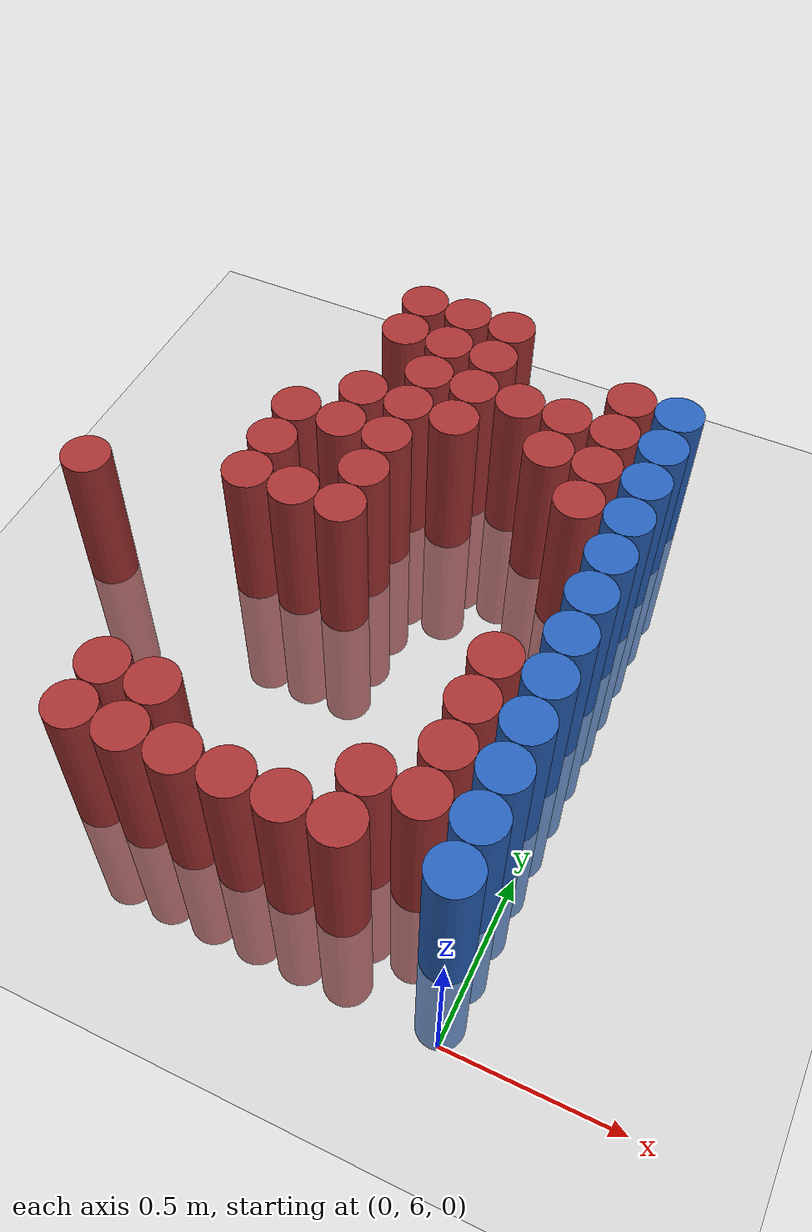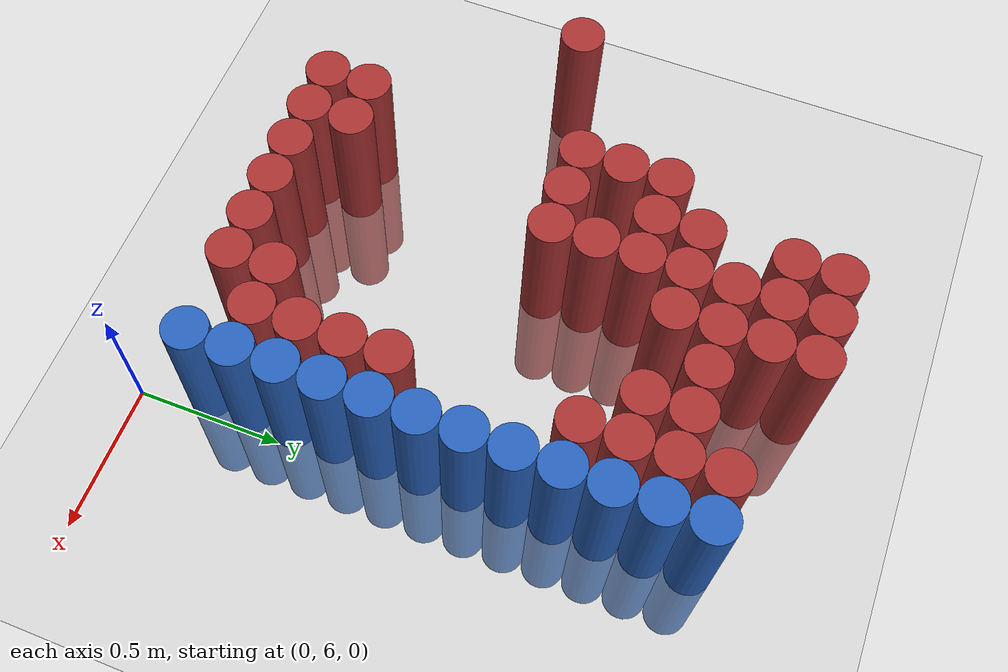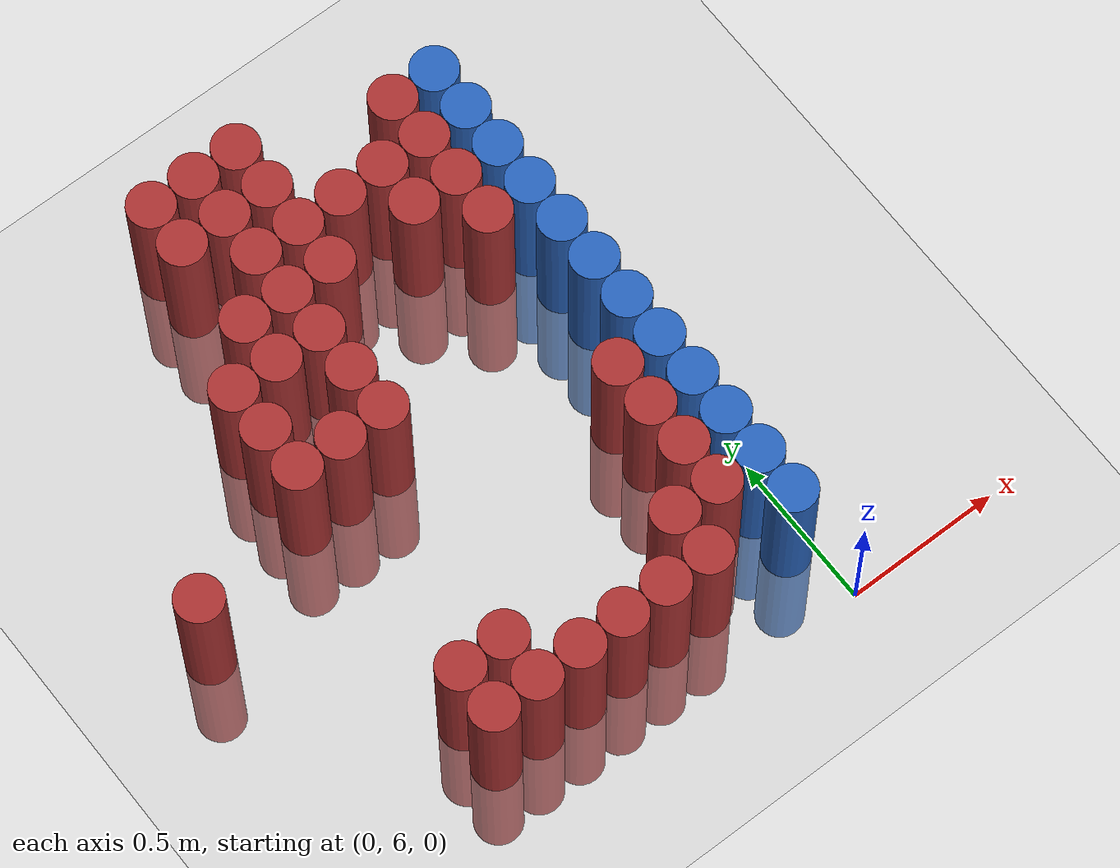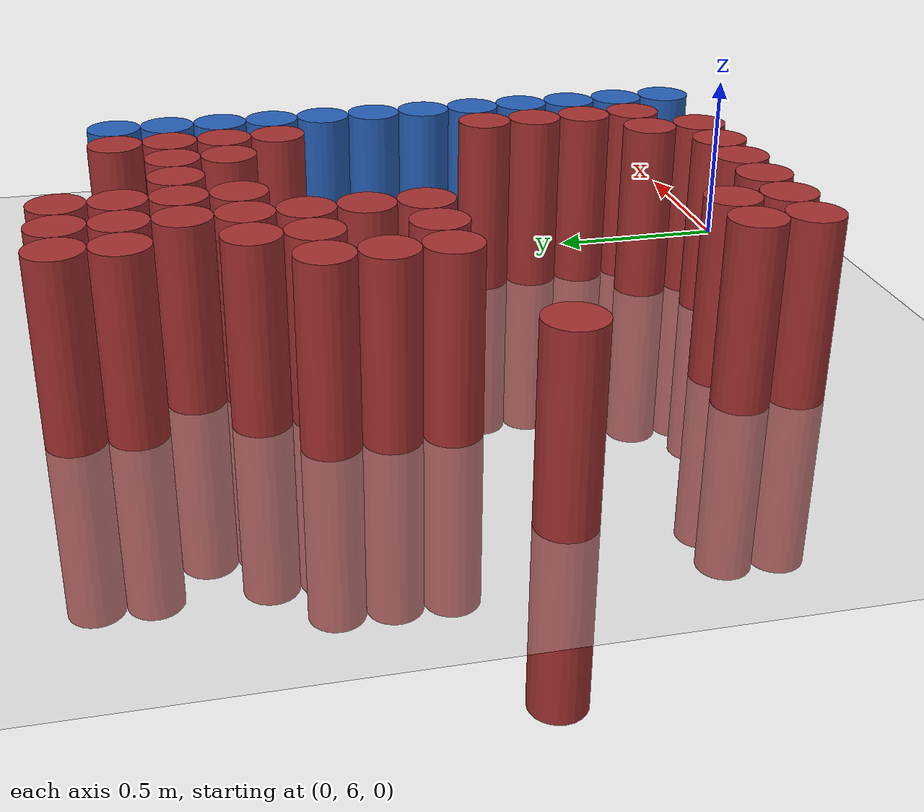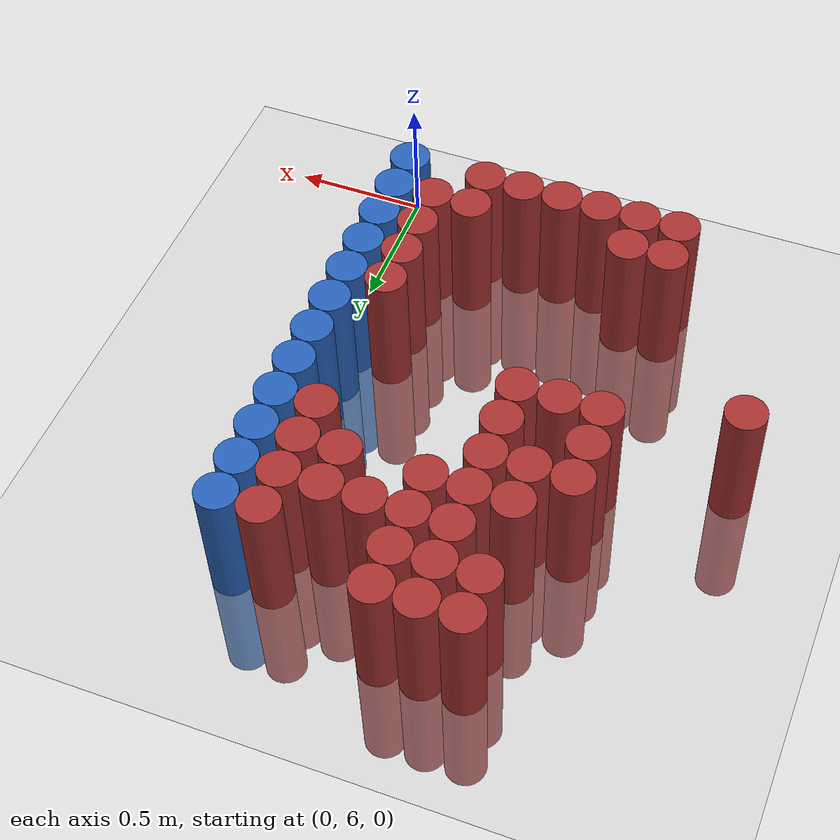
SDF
<sdf version="1.6">
 <world name="default">
  <model name="ground_plane">
   <static>1</static>
   <link name="link">
    <collision name="collision">
     <geometry><plane><normal>0 0 1</normal><size>100 100</size></plane></geometry>
     <surface><friction><ode><mu>100</mu><mu2>50</mu2></ode></friction></surface>
    </collision>
    <visual name="visual">
     <cast_shadows>0</cast_shadows>
     <geometry><plane><normal>0 0 1</normal><size>100 100</size></plane></geometry>
     <material>
      <script><uri>file://media/materials/scripts/gazebo.material</uri><name>Gazebo/Grey</name></script>
     </material>
    </visual>
   </link>
  </model>
  <model name="unit_cylinder_236">
   <static>1</static>
   <pose>-1.575000 6.975000 0.000000 0.000000 0.000000 0.000000</pose>
   <link name="link">
    <inertial>
     <mass>1</mass>
     <inertia><ixx>0.145833</ixx><ixy>0</ixy><ixz>0</ixz><iyy>0.145833</iyy><iyz>0</iyz><izz>0.125</izz></inertia>
    </inertial>
    <collision name="collision">
     <geometry><cylinder><radius>0.075000</radius><length>1</length></cylinder></geometry>
    </collision>
    <visual name="visual">
     <geometry><cylinder><radius>0.075000</radius><length>1</length></cylinder></geometry>
     <material>
      <ambient>0.648000 0.192000 0.192000 1</ambient>
      <diffuse>0.648000 0.192000 0.192000 1</diffuse>
     </material>
     <material>
      <script><name>Gazebo/Grey</name><uri>file://media/materials/scripts/gazebo.material</uri></script>
     </material>
    </visual>
   </link>
  </model>
  <model name="unit_cylinder_253">
   <static>1</static>
   <pose>-1.125000 6.225000 0.000000 0.000000 0.000000 0.000000</pose>
   <link name="link">
    <inertial>
     <mass>1</mass>
     <inertia><ixx>0.145833</ixx><ixy>0</ixy><ixz>0</ixz><iyy>0.145833</iyy><iyz>0</iyz><izz>0.125</izz></inertia>
    </inertial>
    <collision name="collision">
     <geometry><cylinder><radius>0.075000</radius><length>1</length></cylinder></geometry>
    </collision>
    <visual name="visual">
     <geometry><cylinder><radius>0.075000</radius><length>1</length></cylinder></geometry>
     <material>
      <ambient>0.648000 0.192000 0.192000 1</ambient>
      <diffuse>0.648000 0.192000 0.192000 1</diffuse>
     </material>
     <material>
      <script><name>Gazebo/Grey</name><uri>file://media/materials/scripts/gazebo.material</uri></script>
     </material>
    </visual>
   </link>
  </model>
  <model name="unit_cylinder_254">
   <static>1</static>
   <pose>-1.125000 6.375000 0.000000 0.000000 0.000000 0.000000</pose>
   <link name="link">
    <inertial>
     <mass>1</mass>
     <inertia><ixx>0.145833</ixx><ixy>0</ixy><ixz>0</ixz><iyy>0.145833</iyy><iyz>0</iyz><izz>0.125</izz></inertia>
    </inertial>
    <collision name="collision">
     <geometry><cylinder><radius>0.075000</radius><length>1</length></cylinder></geometry>
    </collision>
    <visual name="visual">
     <geometry><cylinder><radius>0.075000</radius><length>1</length></cylinder></geometry>
     <material>
      <ambient>0.648000 0.192000 0.192000 1</ambient>
      <diffuse>0.648000 0.192000 0.192000 1</diffuse>
     </material>
     <material>
      <script><name>Gazebo/Grey</name><uri>file://media/materials/scripts/gazebo.material</uri></script>
     </material>
    </visual>
   </link>
  </model>
  <model name="unit_cylinder_255">
   <static>1</static>
   <pose>-1.125000 7.125000 0.000000 0.000000 0.000000 0.000000</pose>
   <link name="link">
    <inertial>
     <mass>1</mass>
     <inertia><ixx>0.145833</ixx><ixy>0</ixy><ixz>0</ixz><iyy>0.145833</iyy><iyz>0</iyz><izz>0.125</izz></inertia>
    </inertial>
    <collision name="collision">
     <geometry><cylinder><radius>0.075000</radius><length>1</length></cylinder></geometry>
    </collision>
    <visual name="visual">
     <geometry><cylinder><radius>0.075000</radius><length>1</length></cylinder></geometry>
     <material>
      <ambient>0.648000 0.192000 0.192000 1</ambient>
      <diffuse>0.648000 0.192000 0.192000 1</diffuse>
     </material>
     <material>
      <script><name>Gazebo/Grey</name><uri>file://media/materials/scripts/gazebo.material</uri></script>
     </material>
    </visual>
   </link>
  </model>
  <model name="unit_cylinder_256">
   <static>1</static>
   <pose>-1.125000 7.275000 0.000000 0.000000 0.000000 0.000000</pose>
   <link name="link">
    <inertial>
     <mass>1</mass>
     <inertia><ixx>0.145833</ixx><ixy>0</ixy><ixz>0</ixz><iyy>0.145833</iyy><iyz>0</iyz><izz>0.125</izz></inertia>
    </inertial>
    <collision name="collision">
     <geometry><cylinder><radius>0.075000</radius><length>1</length></cylinder></geometry>
    </collision>
    <visual name="visual">
     <geometry><cylinder><radius>0.075000</radius><length>1</length></cylinder></geometry>
     <material>
      <ambient>0.648000 0.192000 0.192000 1</ambient>
      <diffuse>0.648000 0.192000 0.192000 1</diffuse>
     </material>
     <material>
      <script><name>Gazebo/Grey</name><uri>file://media/materials/scripts/gazebo.material</uri></script>
     </material>
    </visual>
   </link>
  </model>
  <model name="unit_cylinder_257">
   <static>1</static>
   <pose>-1.125000 7.425000 0.000000 0.000000 0.000000 0.000000</pose>
   <link name="link">
    <inertial>
     <mass>1</mass>
     <inertia><ixx>0.145833</ixx><ixy>0</ixy><ixz>0</ixz><iyy>0.145833</iyy><iyz>0</iyz><izz>0.125</izz></inertia>
    </inertial>
    <collision name="collision">
     <geometry><cylinder><radius>0.075000</radius><length>1</length></cylinder></geometry>
    </collision>
    <visual name="visual">
     <geometry><cylinder><radius>0.075000</radius><length>1</length></cylinder></geometry>
     <material>
      <ambient>0.648000 0.192000 0.192000 1</ambient>
      <diffuse>0.648000 0.192000 0.192000 1</diffuse>
     </material>
     <material>
      <script><name>Gazebo/Grey</name><uri>file://media/materials/scripts/gazebo.material</uri></script>
     </material>
    </visual>
   </link>
  </model>
  <model name="unit_cylinder_264">
   <static>1</static>
   <pose>-0.975000 6.225000 0.000000 0.000000 0.000000 0.000000</pose>
   <link name="link">
    <inertial>
     <mass>1</mass>
     <inertia><ixx>0.145833</ixx><ixy>0</ixy><ixz>0</ixz><iyy>0.145833</iyy><iyz>0</iyz><izz>0.125</izz></inertia>
    </inertial>
    <collision name="collision">
     <geometry><cylinder><radius>0.075000</radius><length>1</length></cylinder></geometry>
    </collision>
    <visual name="visual">
     <geometry><cylinder><radius>0.075000</radius><length>1</length></cylinder></geometry>
     <material>
      <ambient>0.648000 0.192000 0.192000 1</ambient>
      <diffuse>0.648000 0.192000 0.192000 1</diffuse>
     </material>
     <material>
      <script><name>Gazebo/Grey</name><uri>file://media/materials/scripts/gazebo.material</uri></script>
     </material>
    </visual>
   </link>
  </model>
  <model name="unit_cylinder_265">
   <static>1</static>
   <pose>-0.975000 6.375000 0.000000 0.000000 0.000000 0.000000</pose>
   <link name="link">
    <inertial>
     <mass>1</mass>
     <inertia><ixx>0.145833</ixx><ixy>0</ixy><ixz>0</ixz><iyy>0.145833</iyy><iyz>0</iyz><izz>0.125</izz></inertia>
    </inertial>
    <collision name="collision">
     <geometry><cylinder><radius>0.075000</radius><length>1</length></cylinder></geometry>
    </collision>
    <visual name="visual">
     <geometry><cylinder><radius>0.075000</radius><length>1</length></cylinder></geometry>
     <material>
      <ambient>0.648000 0.192000 0.192000 1</ambient>
      <diffuse>0.648000 0.192000 0.192000 1</diffuse>
     </material>
     <material>
      <script><name>Gazebo/Grey</name><uri>file://media/materials/scripts/gazebo.material</uri></script>
     </material>
    </visual>
   </link>
  </model>
  <model name="unit_cylinder_266">
   <static>1</static>
   <pose>-0.975000 7.125000 0.000000 0.000000 0.000000 0.000000</pose>
   <link name="link">
    <inertial>
     <mass>1</mass>
     <inertia><ixx>0.145833</ixx><ixy>0</ixy><ixz>0</ixz><iyy>0.145833</iyy><iyz>0</iyz><izz>0.125</izz></inertia>
    </inertial>
    <collision name="collision">
     <geometry><cylinder><radius>0.075000</radius><length>1</length></cylinder></geometry>
    </collision>
    <visual name="visual">
     <geometry><cylinder><radius>0.075000</radius><length>1</length></cylinder></geometry>
     <material>
      <ambient>0.648000 0.192000 0.192000 1</ambient>
      <diffuse>0.648000 0.192000 0.192000 1</diffuse>
     </material>
     <material>
      <script><name>Gazebo/Grey</name><uri>file://media/materials/scripts/gazebo.material</uri></script>
     </material>
    </visual>
   </link>
  </model>
  <model name="unit_cylinder_267">
   <static>1</static>
   <pose>-0.975000 7.425000 0.000000 0.000000 0.000000 0.000000</pose>
   <link name="link">
    <inertial>
     <mass>1</mass>
     <inertia><ixx>0.145833</ixx><ixy>0</ixy><ixz>0</ixz><iyy>0.145833</iyy><iyz>0</iyz><izz>0.125</izz></inertia>
    </inertial>
    <collision name="collision">
     <geometry><cylinder><radius>0.075000</radius><length>1</length></cylinder></geometry>
    </collision>
    <visual name="visual">
     <geometry><cylinder><radius>0.075000</radius><length>1</length></cylinder></geometry>
     <material>
      <ambient>0.648000 0.192000 0.192000 1</ambient>
      <diffuse>0.648000 0.192000 0.192000 1</diffuse>
     </material>
     <material>
      <script><name>Gazebo/Grey</name><uri>file://media/materials/scripts/gazebo.material</uri></script>
     </material>
    </visual>
   </link>
  </model>
  <model name="unit_cylinder_268">
   <static>1</static>
   <pose>-0.975000 7.575000 0.000000 0.000000 0.000000 0.000000</pose>
   <link name="link">
    <inertial>
     <mass>1</mass>
     <inertia><ixx>0.145833</ixx><ixy>0</ixy><ixz>0</ixz><iyy>0.145833</iyy><iyz>0</iyz><izz>0.125</izz></inertia>
    </inertial>
    <collision name="collision">
     <geometry><cylinder><radius>0.075000</radius><length>1</length></cylinder></geometry>
    </collision>
    <visual name="visual">
     <geometry><cylinder><radius>0.075000</radius><length>1</length></cylinder></geometry>
     <material>
      <ambient>0.648000 0.192000 0.192000 1</ambient>
      <diffuse>0.648000 0.192000 0.192000 1</diffuse>
     </material>
     <material>
      <script><name>Gazebo/Grey</name><uri>file://media/materials/scripts/gazebo.material</uri></script>
     </material>
    </visual>
   </link>
  </model>
  <model name="unit_cylinder_269">
   <static>1</static>
   <pose>-0.975000 7.875000 0.000000 0.000000 0.000000 0.000000</pose>
   <link name="link">
    <inertial>
     <mass>1</mass>
     <inertia><ixx>0.145833</ixx><ixy>0</ixy><ixz>0</ixz><iyy>0.145833</iyy><iyz>0</iyz><izz>0.125</izz></inertia>
    </inertial>
    <collision name="collision">
     <geometry><cylinder><radius>0.075000</radius><length>1</length></cylinder></geometry>
    </collision>
    <visual name="visual">
     <geometry><cylinder><radius>0.075000</radius><length>1</length></cylinder></geometry>
     <material>
      <ambient>0.648000 0.192000 0.192000 1</ambient>
      <diffuse>0.648000 0.192000 0.192000 1</diffuse>
     </material>
     <material>
      <script><name>Gazebo/Grey</name><uri>file://media/materials/scripts/gazebo.material</uri></script>
     </material>
    </visual>
   </link>
  </model>
  <model name="unit_cylinder_270">
   <static>1</static>
   <pose>-0.975000 8.025000 0.000000 0.000000 0.000000 0.000000</pose>
   <link name="link">
    <inertial>
     <mass>1</mass>
     <inertia><ixx>0.145833</ixx><ixy>0</ixy><ixz>0</ixz><iyy>0.145833</iyy><iyz>0</iyz><izz>0.125</izz></inertia>
    </inertial>
    <collision name="collision">
     <geometry><cylinder><radius>0.075000</radius><length>1</length></cylinder></geometry>
    </collision>
    <visual name="visual">
     <geometry><cylinder><radius>0.075000</radius><length>1</length></cylinder></geometry>
     <material>
      <ambient>0.648000 0.192000 0.192000 1</ambient>
      <diffuse>0.648000 0.192000 0.192000 1</diffuse>
     </material>
     <material>
      <script><name>Gazebo/Grey</name><uri>file://media/materials/scripts/gazebo.material</uri></script>
     </material>
    </visual>
   </link>
  </model>
  <model name="unit_cylinder_276">
   <static>1</static>
   <pose>-0.825000 6.225000 0.000000 0.000000 0.000000 0.000000</pose>
   <link name="link">
    <inertial>
     <mass>1</mass>
     <inertia><ixx>0.145833</ixx><ixy>0</ixy><ixz>0</ixz><iyy>0.145833</iyy><iyz>0</iyz><izz>0.125</izz></inertia>
    </inertial>
    <collision name="collision">
     <geometry><cylinder><radius>0.075000</radius><length>1</length></cylinder></geometry>
    </collision>
    <visual name="visual">
     <geometry><cylinder><radius>0.075000</radius><length>1</length></cylinder></geometry>
     <material>
      <ambient>0.648000 0.192000 0.192000 1</ambient>
      <diffuse>0.648000 0.192000 0.192000 1</diffuse>
     </material>
     <material>
      <script><name>Gazebo/Grey</name><uri>file://media/materials/scripts/gazebo.material</uri></script>
     </material>
    </visual>
   </link>
  </model>
  <model name="unit_cylinder_277">
   <static>1</static>
   <pose>-0.825000 7.125000 0.000000 0.000000 0.000000 0.000000</pose>
   <link name="link">
    <inertial>
     <mass>1</mass>
     <inertia><ixx>0.145833</ixx><ixy>0</ixy><ixz>0</ixz><iyy>0.145833</iyy><iyz>0</iyz><izz>0.125</izz></inertia>
    </inertial>
    <collision name="collision">
     <geometry><cylinder><radius>0.075000</radius><length>1</length></cylinder></geometry>
    </collision>
    <visual name="visual">
     <geometry><cylinder><radius>0.075000</radius><length>1</length></cylinder></geometry>
     <material>
      <ambient>0.648000 0.192000 0.192000 1</ambient>
      <diffuse>0.648000 0.192000 0.192000 1</diffuse>
     </material>
     <material>
      <script><name>Gazebo/Grey</name><uri>file://media/materials/scripts/gazebo.material</uri></script>
     </material>
    </visual>
   </link>
  </model>
  <model name="unit_cylinder_278">
   <static>1</static>
   <pose>-0.825000 7.275000 0.000000 0.000000 0.000000 0.000000</pose>
   <link name="link">
    <inertial>
     <mass>1</mass>
     <inertia><ixx>0.145833</ixx><ixy>0</ixy><ixz>0</ixz><iyy>0.145833</iyy><iyz>0</iyz><izz>0.125</izz></inertia>
    </inertial>
    <collision name="collision">
     <geometry><cylinder><radius>0.075000</radius><length>1</length></cylinder></geometry>
    </collision>
    <visual name="visual">
     <geometry><cylinder><radius>0.075000</radius><length>1</length></cylinder></geometry>
     <material>
      <ambient>0.648000 0.192000 0.192000 1</ambient>
      <diffuse>0.648000 0.192000 0.192000 1</diffuse>
     </material>
     <material>
      <script><name>Gazebo/Grey</name><uri>file://media/materials/scripts/gazebo.material</uri></script>
     </material>
    </visual>
   </link>
  </model>
  <model name="unit_cylinder_279">
   <static>1</static>
   <pose>-0.825000 7.425000 0.000000 0.000000 0.000000 0.000000</pose>
   <link name="link">
    <inertial>
     <mass>1</mass>
     <inertia><ixx>0.145833</ixx><ixy>0</ixy><ixz>0</ixz><iyy>0.145833</iyy><iyz>0</iyz><izz>0.125</izz></inertia>
    </inertial>
    <collision name="collision">
     <geometry><cylinder><radius>0.075000</radius><length>1</length></cylinder></geometry>
    </collision>
    <visual name="visual">
     <geometry><cylinder><radius>0.075000</radius><length>1</length></cylinder></geometry>
     <material>
      <ambient>0.648000 0.192000 0.192000 1</ambient>
      <diffuse>0.648000 0.192000 0.192000 1</diffuse>
     </material>
     <material>
      <script><name>Gazebo/Grey</name><uri>file://media/materials/scripts/gazebo.material</uri></script>
     </material>
    </visual>
   </link>
  </model>
  <model name="unit_cylinder_280">
   <static>1</static>
   <pose>-0.825000 7.575000 0.000000 0.000000 0.000000 0.000000</pose>
   <link name="link">
    <inertial>
     <mass>1</mass>
     <inertia><ixx>0.145833</ixx><ixy>0</ixy><ixz>0</ixz><iyy>0.145833</iyy><iyz>0</iyz><izz>0.125</izz></inertia>
    </inertial>
    <collision name="collision">
     <geometry><cylinder><radius>0.075000</radius><length>1</length></cylinder></geometry>
    </collision>
    <visual name="visual">
     <geometry><cylinder><radius>0.075000</radius><length>1</length></cylinder></geometry>
     <material>
      <ambient>0.648000 0.192000 0.192000 1</ambient>
      <diffuse>0.648000 0.192000 0.192000 1</diffuse>
     </material>
     <material>
      <script><name>Gazebo/Grey</name><uri>file://media/materials/scripts/gazebo.material</uri></script>
     </material>
    </visual>
   </link>
  </model>
  <model name="unit_cylinder_281">
   <static>1</static>
   <pose>-0.825000 7.725000 0.000000 0.000000 0.000000 0.000000</pose>
   <link name="link">
    <inertial>
     <mass>1</mass>
     <inertia><ixx>0.145833</ixx><ixy>0</ixy><ixz>0</ixz><iyy>0.145833</iyy><iyz>0</iyz><izz>0.125</izz></inertia>
    </inertial>
    <collision name="collision">
     <geometry><cylinder><radius>0.075000</radius><length>1</length></cylinder></geometry>
    </collision>
    <visual name="visual">
     <geometry><cylinder><radius>0.075000</radius><length>1</length></cylinder></geometry>
     <material>
      <ambient>0.648000 0.192000 0.192000 1</ambient>
      <diffuse>0.648000 0.192000 0.192000 1</diffuse>
     </material>
     <material>
      <script><name>Gazebo/Grey</name><uri>file://media/materials/scripts/gazebo.material</uri></script>
     </material>
    </visual>
   </link>
  </model>
  <model name="unit_cylinder_282">
   <static>1</static>
   <pose>-0.825000 7.875000 0.000000 0.000000 0.000000 0.000000</pose>
   <link name="link">
    <inertial>
     <mass>1</mass>
     <inertia><ixx>0.145833</ixx><ixy>0</ixy><ixz>0</ixz><iyy>0.145833</iyy><iyz>0</iyz><izz>0.125</izz></inertia>
    </inertial>
    <collision name="collision">
     <geometry><cylinder><radius>0.075000</radius><length>1</length></cylinder></geometry>
    </collision>
    <visual name="visual">
     <geometry><cylinder><radius>0.075000</radius><length>1</length></cylinder></geometry>
     <material>
      <ambient>0.648000 0.192000 0.192000 1</ambient>
      <diffuse>0.648000 0.192000 0.192000 1</diffuse>
     </material>
     <material>
      <script><name>Gazebo/Grey</name><uri>file://media/materials/scripts/gazebo.material</uri></script>
     </material>
    </visual>
   </link>
  </model>
  <model name="unit_cylinder_283">
   <static>1</static>
   <pose>-0.825000 8.025000 0.000000 0.000000 0.000000 0.000000</pose>
   <link name="link">
    <inertial>
     <mass>1</mass>
     <inertia><ixx>0.145833</ixx><ixy>0</ixy><ixz>0</ixz><iyy>0.145833</iyy><iyz>0</iyz><izz>0.125</izz></inertia>
    </inertial>
    <collision name="collision">
     <geometry><cylinder><radius>0.075000</radius><length>1</length></cylinder></geometry>
    </collision>
    <visual name="visual">
     <geometry><cylinder><radius>0.075000</radius><length>1</length></cylinder></geometry>
     <material>
      <ambient>0.648000 0.192000 0.192000 1</ambient>
      <diffuse>0.648000 0.192000 0.192000 1</diffuse>
     </material>
     <material>
      <script><name>Gazebo/Grey</name><uri>file://media/materials/scripts/gazebo.material</uri></script>
     </material>
    </visual>
   </link>
  </model>
  <model name="unit_cylinder_289">
   <static>1</static>
   <pose>-0.675000 6.225000 0.000000 0.000000 0.000000 0.000000</pose>
   <link name="link">
    <inertial>
     <mass>1</mass>
     <inertia><ixx>0.145833</ixx><ixy>0</ixy><ixz>0</ixz><iyy>0.145833</iyy><iyz>0</iyz><izz>0.125</izz></inertia>
    </inertial>
    <collision name="collision">
     <geometry><cylinder><radius>0.075000</radius><length>1</length></cylinder></geometry>
    </collision>
    <visual name="visual">
     <geometry><cylinder><radius>0.075000</radius><length>1</length></cylinder></geometry>
     <material>
      <ambient>0.648000 0.192000 0.192000 1</ambient>
      <diffuse>0.648000 0.192000 0.192000 1</diffuse>
     </material>
     <material>
      <script><name>Gazebo/Grey</name><uri>file://media/materials/scripts/gazebo.material</uri></script>
     </material>
    </visual>
   </link>
  </model>
  <model name="unit_cylinder_290">
   <static>1</static>
   <pose>-0.675000 7.575000 0.000000 0.000000 0.000000 0.000000</pose>
   <link name="link">
    <inertial>
     <mass>1</mass>
     <inertia><ixx>0.145833</ixx><ixy>0</ixy><ixz>0</ixz><iyy>0.145833</iyy><iyz>0</iyz><izz>0.125</izz></inertia>
    </inertial>
    <collision name="collision">
     <geometry><cylinder><radius>0.075000</radius><length>1</length></cylinder></geometry>
    </collision>
    <visual name="visual">
     <geometry><cylinder><radius>0.075000</radius><length>1</length></cylinder></geometry>
     <material>
      <ambient>0.648000 0.192000 0.192000 1</ambient>
      <diffuse>0.648000 0.192000 0.192000 1</diffuse>
     </material>
     <material>
      <script><name>Gazebo/Grey</name><uri>file://media/materials/scripts/gazebo.material</uri></script>
     </material>
    </visual>
   </link>
  </model>
  <model name="unit_cylinder_291">
   <static>1</static>
   <pose>-0.675000 7.725000 0.000000 0.000000 0.000000 0.000000</pose>
   <link name="link">
    <inertial>
     <mass>1</mass>
     <inertia><ixx>0.145833</ixx><ixy>0</ixy><ixz>0</ixz><iyy>0.145833</iyy><iyz>0</iyz><izz>0.125</izz></inertia>
    </inertial>
    <collision name="collision">
     <geometry><cylinder><radius>0.075000</radius><length>1</length></cylinder></geometry>
    </collision>
    <visual name="visual">
     <geometry><cylinder><radius>0.075000</radius><length>1</length></cylinder></geometry>
     <material>
      <ambient>0.648000 0.192000 0.192000 1</ambient>
      <diffuse>0.648000 0.192000 0.192000 1</diffuse>
     </material>
     <material>
      <script><name>Gazebo/Grey</name><uri>file://media/materials/scripts/gazebo.material</uri></script>
     </material>
    </visual>
   </link>
  </model>
  <model name="unit_cylinder_292">
   <static>1</static>
   <pose>-0.675000 7.875000 0.000000 0.000000 0.000000 0.000000</pose>
   <link name="link">
    <inertial>
     <mass>1</mass>
     <inertia><ixx>0.145833</ixx><ixy>0</ixy><ixz>0</ixz><iyy>0.145833</iyy><iyz>0</iyz><izz>0.125</izz></inertia>
    </inertial>
    <collision name="collision">
     <geometry><cylinder><radius>0.075000</radius><length>1</length></cylinder></geometry>
    </collision>
    <visual name="visual">
     <geometry><cylinder><radius>0.075000</radius><length>1</length></cylinder></geometry>
     <material>
      <ambient>0.648000 0.192000 0.192000 1</ambient>
      <diffuse>0.648000 0.192000 0.192000 1</diffuse>
     </material>
     <material>
      <script><name>Gazebo/Grey</name><uri>file://media/materials/scripts/gazebo.material</uri></script>
     </material>
    </visual>
   </link>
  </model>
  <model name="unit_cylinder_293">
   <static>1</static>
   <pose>-0.675000 8.025000 0.000000 0.000000 0.000000 0.000000</pose>
   <link name="link">
    <inertial>
     <mass>1</mass>
     <inertia><ixx>0.145833</ixx><ixy>0</ixy><ixz>0</ixz><iyy>0.145833</iyy><iyz>0</iyz><izz>0.125</izz></inertia>
    </inertial>
    <collision name="collision">
     <geometry><cylinder><radius>0.075000</radius><length>1</length></cylinder></geometry>
    </collision>
    <visual name="visual">
     <geometry><cylinder><radius>0.075000</radius><length>1</length></cylinder></geometry>
     <material>
      <ambient>0.648000 0.192000 0.192000 1</ambient>
      <diffuse>0.648000 0.192000 0.192000 1</diffuse>
     </material>
     <material>
      <script><name>Gazebo/Grey</name><uri>file://media/materials/scripts/gazebo.material</uri></script>
     </material>
    </visual>
   </link>
  </model>
  <model name="unit_cylinder_298">
   <static>1</static>
   <pose>-0.525000 6.225000 0.000000 0.000000 0.000000 0.000000</pose>
   <link name="link">
    <inertial>
     <mass>1</mass>
     <inertia><ixx>0.145833</ixx><ixy>0</ixy><ixz>0</ixz><iyy>0.145833</iyy><iyz>0</iyz><izz>0.125</izz></inertia>
    </inertial>
    <collision name="collision">
     <geometry><cylinder><radius>0.075000</radius><length>1</length></cylinder></geometry>
    </collision>
    <visual name="visual">
     <geometry><cylinder><radius>0.075000</radius><length>1</length></cylinder></geometry>
     <material>
      <ambient>0.648000 0.192000 0.192000 1</ambient>
      <diffuse>0.648000 0.192000 0.192000 1</diffuse>
     </material>
     <material>
      <script><name>Gazebo/Grey</name><uri>file://media/materials/scripts/gazebo.material</uri></script>
     </material>
    </visual>
   </link>
  </model>
  <model name="unit_cylinder_299">
   <static>1</static>
   <pose>-0.525000 7.725000 0.000000 0.000000 0.000000 0.000000</pose>
   <link name="link">
    <inertial>
     <mass>1</mass>
     <inertia><ixx>0.145833</ixx><ixy>0</ixy><ixz>0</ixz><iyy>0.145833</iyy><iyz>0</iyz><izz>0.125</izz></inertia>
    </inertial>
    <collision name="collision">
     <geometry><cylinder><radius>0.075000</radius><length>1</length></cylinder></geometry>
    </collision>
    <visual name="visual">
     <geometry><cylinder><radius>0.075000</radius><length>1</length></cylinder></geometry>
     <material>
      <ambient>0.648000 0.192000 0.192000 1</ambient>
      <diffuse>0.648000 0.192000 0.192000 1</diffuse>
     </material>
     <material>
      <script><name>Gazebo/Grey</name><uri>file://media/materials/scripts/gazebo.material</uri></script>
     </material>
    </visual>
   </link>
  </model>
  <model name="unit_cylinder_305">
   <static>1</static>
   <pose>-0.375000 6.225000 0.000000 0.000000 0.000000 0.000000</pose>
   <link name="link">
    <inertial>
     <mass>1</mass>
     <inertia><ixx>0.145833</ixx><ixy>0</ixy><ixz>0</ixz><iyy>0.145833</iyy><iyz>0</iyz><izz>0.125</izz></inertia>
    </inertial>
    <collision name="collision">
     <geometry><cylinder><radius>0.075000</radius><length>1</length></cylinder></geometry>
    </collision>
    <visual name="visual">
     <geometry><cylinder><radius>0.075000</radius><length>1</length></cylinder></geometry>
     <material>
      <ambient>0.648000 0.192000 0.192000 1</ambient>
      <diffuse>0.648000 0.192000 0.192000 1</diffuse>
     </material>
     <material>
      <script><name>Gazebo/Grey</name><uri>file://media/materials/scripts/gazebo.material</uri></script>
     </material>
    </visual>
   </link>
  </model>
  <model name="unit_cylinder_306">
   <static>1</static>
   <pose>-0.375000 6.375000 0.000000 0.000000 0.000000 0.000000</pose>
   <link name="link">
    <inertial>
     <mass>1</mass>
     <inertia><ixx>0.145833</ixx><ixy>0</ixy><ixz>0</ixz><iyy>0.145833</iyy><iyz>0</iyz><izz>0.125</izz></inertia>
    </inertial>
    <collision name="collision">
     <geometry><cylinder><radius>0.075000</radius><length>1</length></cylinder></geometry>
    </collision>
    <visual name="visual">
     <geometry><cylinder><radius>0.075000</radius><length>1</length></cylinder></geometry>
     <material>
      <ambient>0.648000 0.192000 0.192000 1</ambient>
      <diffuse>0.648000 0.192000 0.192000 1</diffuse>
     </material>
     <material>
      <script><name>Gazebo/Grey</name><uri>file://media/materials/scripts/gazebo.material</uri></script>
     </material>
    </visual>
   </link>
  </model>
  <model name="unit_cylinder_307">
   <static>1</static>
   <pose>-0.375000 7.575000 0.000000 0.000000 0.000000 0.000000</pose>
   <link name="link">
    <inertial>
     <mass>1</mass>
     <inertia><ixx>0.145833</ixx><ixy>0</ixy><ixz>0</ixz><iyy>0.145833</iyy><iyz>0</iyz><izz>0.125</izz></inertia>
    </inertial>
    <collision name="collision">
     <geometry><cylinder><radius>0.075000</radius><length>1</length></cylinder></geometry>
    </collision>
    <visual name="visual">
     <geometry><cylinder><radius>0.075000</radius><length>1</length></cylinder></geometry>
     <material>
      <ambient>0.648000 0.192000 0.192000 1</ambient>
      <diffuse>0.648000 0.192000 0.192000 1</diffuse>
     </material>
     <material>
      <script><name>Gazebo/Grey</name><uri>file://media/materials/scripts/gazebo.material</uri></script>
     </material>
    </visual>
   </link>
  </model>
  <model name="unit_cylinder_308">
   <static>1</static>
   <pose>-0.375000 7.725000 0.000000 0.000000 0.000000 0.000000</pose>
   <link name="link">
    <inertial>
     <mass>1</mass>
     <inertia><ixx>0.145833</ixx><ixy>0</ixy><ixz>0</ixz><iyy>0.145833</iyy><iyz>0</iyz><izz>0.125</izz></inertia>
    </inertial>
    <collision name="collision">
     <geometry><cylinder><radius>0.075000</radius><length>1</length></cylinder></geometry>
    </collision>
    <visual name="visual">
     <geometry><cylinder><radius>0.075000</radius><length>1</length></cylinder></geometry>
     <material>
      <ambient>0.648000 0.192000 0.192000 1</ambient>
      <diffuse>0.648000 0.192000 0.192000 1</diffuse>
     </material>
     <material>
      <script><name>Gazebo/Grey</name><uri>file://media/materials/scripts/gazebo.material</uri></script>
     </material>
    </visual>
   </link>
  </model>
  <model name="unit_cylinder_316">
   <static>1</static>
   <pose>-0.225000 6.375000 0.000000 0.000000 0.000000 0.000000</pose>
   <link name="link">
    <inertial>
     <mass>1</mass>
     <inertia><ixx>0.145833</ixx><ixy>0</ixy><ixz>0</ixz><iyy>0.145833</iyy><iyz>0</iyz><izz>0.125</izz></inertia>
    </inertial>
    <collision name="collision">
     <geometry><cylinder><radius>0.075000</radius><length>1</length></cylinder></geometry>
    </collision>
    <visual name="visual">
     <geometry><cylinder><radius>0.075000</radius><length>1</length></cylinder></geometry>
     <material>
      <ambient>0.648000 0.192000 0.192000 1</ambient>
      <diffuse>0.648000 0.192000 0.192000 1</diffuse>
     </material>
     <material>
      <script><name>Gazebo/Grey</name><uri>file://media/materials/scripts/gazebo.material</uri></script>
     </material>
    </visual>
   </link>
  </model>
  <model name="unit_cylinder_317">
   <static>1</static>
   <pose>-0.225000 6.525000 0.000000 0.000000 0.000000 0.000000</pose>
   <link name="link">
    <inertial>
     <mass>1</mass>
     <inertia><ixx>0.145833</ixx><ixy>0</ixy><ixz>0</ixz><iyy>0.145833</iyy><iyz>0</iyz><izz>0.125</izz></inertia>
    </inertial>
    <collision name="collision">
     <geometry><cylinder><radius>0.075000</radius><length>1</length></cylinder></geometry>
    </collision>
    <visual name="visual">
     <geometry><cylinder><radius>0.075000</radius><length>1</length></cylinder></geometry>
     <material>
      <ambient>0.648000 0.192000 0.192000 1</ambient>
      <diffuse>0.648000 0.192000 0.192000 1</diffuse>
     </material>
     <material>
      <script><name>Gazebo/Grey</name><uri>file://media/materials/scripts/gazebo.material</uri></script>
     </material>
    </visual>
   </link>
  </model>
  <model name="unit_cylinder_318">
   <static>1</static>
   <pose>-0.225000 6.675000 0.000000 0.000000 0.000000 0.000000</pose>
   <link name="link">
    <inertial>
     <mass>1</mass>
     <inertia><ixx>0.145833</ixx><ixy>0</ixy><ixz>0</ixz><iyy>0.145833</iyy><iyz>0</iyz><izz>0.125</izz></inertia>
    </inertial>
    <collision name="collision">
     <geometry><cylinder><radius>0.075000</radius><length>1</length></cylinder></geometry>
    </collision>
    <visual name="visual">
     <geometry><cylinder><radius>0.075000</radius><length>1</length></cylinder></geometry>
     <material>
      <ambient>0.648000 0.192000 0.192000 1</ambient>
      <diffuse>0.648000 0.192000 0.192000 1</diffuse>
     </material>
     <material>
      <script><name>Gazebo/Grey</name><uri>file://media/materials/scripts/gazebo.material</uri></script>
     </material>
    </visual>
   </link>
  </model>
  <model name="unit_cylinder_319">
   <static>1</static>
   <pose>-0.225000 6.825000 0.000000 0.000000 0.000000 0.000000</pose>
   <link name="link">
    <inertial>
     <mass>1</mass>
     <inertia><ixx>0.145833</ixx><ixy>0</ixy><ixz>0</ixz><iyy>0.145833</iyy><iyz>0</iyz><izz>0.125</izz></inertia>
    </inertial>
    <collision name="collision">
     <geometry><cylinder><radius>0.075000</radius><length>1</length></cylinder></geometry>
    </collision>
    <visual name="visual">
     <geometry><cylinder><radius>0.075000</radius><length>1</length></cylinder></geometry>
     <material>
      <ambient>0.648000 0.192000 0.192000 1</ambient>
      <diffuse>0.648000 0.192000 0.192000 1</diffuse>
     </material>
     <material>
      <script><name>Gazebo/Grey</name><uri>file://media/materials/scripts/gazebo.material</uri></script>
     </material>
    </visual>
   </link>
  </model>
  <model name="unit_cylinder_320">
   <static>1</static>
   <pose>-0.225000 7.425000 0.000000 0.000000 0.000000 0.000000</pose>
   <link name="link">
    <inertial>
     <mass>1</mass>
     <inertia><ixx>0.145833</ixx><ixy>0</ixy><ixz>0</ixz><iyy>0.145833</iyy><iyz>0</iyz><izz>0.125</izz></inertia>
    </inertial>
    <collision name="collision">
     <geometry><cylinder><radius>0.075000</radius><length>1</length></cylinder></geometry>
    </collision>
    <visual name="visual">
     <geometry><cylinder><radius>0.075000</radius><length>1</length></cylinder></geometry>
     <material>
      <ambient>0.648000 0.192000 0.192000 1</ambient>
      <diffuse>0.648000 0.192000 0.192000 1</diffuse>
     </material>
     <material>
      <script><name>Gazebo/Grey</name><uri>file://media/materials/scripts/gazebo.material</uri></script>
     </material>
    </visual>
   </link>
  </model>
  <model name="unit_cylinder_321">
   <static>1</static>
   <pose>-0.225000 7.575000 0.000000 0.000000 0.000000 0.000000</pose>
   <link name="link">
    <inertial>
     <mass>1</mass>
     <inertia><ixx>0.145833</ixx><ixy>0</ixy><ixz>0</ixz><iyy>0.145833</iyy><iyz>0</iyz><izz>0.125</izz></inertia>
    </inertial>
    <collision name="collision">
     <geometry><cylinder><radius>0.075000</radius><length>1</length></cylinder></geometry>
    </collision>
    <visual name="visual">
     <geometry><cylinder><radius>0.075000</radius><length>1</length></cylinder></geometry>
     <material>
      <ambient>0.648000 0.192000 0.192000 1</ambient>
      <diffuse>0.648000 0.192000 0.192000 1</diffuse>
     </material>
     <material>
      <script><name>Gazebo/Grey</name><uri>file://media/materials/scripts/gazebo.material</uri></script>
     </material>
    </visual>
   </link>
  </model>
  <model name="unit_cylinder_322">
   <static>1</static>
   <pose>-0.225000 7.725000 0.000000 0.000000 0.000000 0.000000</pose>
   <link name="link">
    <inertial>
     <mass>1</mass>
     <inertia><ixx>0.145833</ixx><ixy>0</ixy><ixz>0</ixz><iyy>0.145833</iyy><iyz>0</iyz><izz>0.125</izz></inertia>
    </inertial>
    <collision name="collision">
     <geometry><cylinder><radius>0.075000</radius><length>1</length></cylinder></geometry>
    </collision>
    <visual name="visual">
     <geometry><cylinder><radius>0.075000</radius><length>1</length></cylinder></geometry>
     <material>
      <ambient>0.648000 0.192000 0.192000 1</ambient>
      <diffuse>0.648000 0.192000 0.192000 1</diffuse>
     </material>
     <material>
      <script><name>Gazebo/Grey</name><uri>file://media/materials/scripts/gazebo.material</uri></script>
     </material>
    </visual>
   </link>
  </model>
  <model name="unit_cylinder_323">
   <static>1</static>
   <pose>-0.225000 7.875000 0.000000 0.000000 0.000000 0.000000</pose>
   <link name="link">
    <inertial>
     <mass>1</mass>
     <inertia><ixx>0.145833</ixx><ixy>0</ixy><ixz>0</ixz><iyy>0.145833</iyy><iyz>0</iyz><izz>0.125</izz></inertia>
    </inertial>
    <collision name="collision">
     <geometry><cylinder><radius>0.075000</radius><length>1</length></cylinder></geometry>
    </collision>
    <visual name="visual">
     <geometry><cylinder><radius>0.075000</radius><length>1</length></cylinder></geometry>
     <material>
      <ambient>0.648000 0.192000 0.192000 1</ambient>
      <diffuse>0.648000 0.192000 0.192000 1</diffuse>
     </material>
     <material>
      <script><name>Gazebo/Grey</name><uri>file://media/materials/scripts/gazebo.material</uri></script>
     </material>
    </visual>
   </link>
  </model>
  <model name="unit_cylinder_339">
   <static>1</static>
   <pose>-0.075000 6.225000 0.000000 0.000000 0.000000 0.000000</pose>
   <link name="link">
    <inertial>
     <mass>1</mass>
     <inertia><ixx>0.145833</ixx><ixy>0</ixy><ixz>0</ixz><iyy>0.145833</iyy><iyz>0</iyz><izz>0.125</izz></inertia>
    </inertial>
    <collision name="collision">
     <geometry><cylinder><radius>0.075000</radius><length>1</length></cylinder></geometry>
    </collision>
    <visual name="visual">
     <geometry><cylinder><radius>0.075000</radius><length>1</length></cylinder></geometry>
     <material>
      <ambient>0.152000 0.379000 0.720000 1</ambient>
      <diffuse>0.152000 0.379000 0.720000 1</diffuse>
     </material>
     <material>
      <script><name>Gazebo/Grey</name><uri>file://media/materials/scripts/gazebo.material</uri></script>
     </material>
    </visual>
   </link>
  </model>
  <model name="unit_cylinder_340">
   <static>1</static>
   <pose>-0.075000 6.375000 0.000000 0.000000 0.000000 0.000000</pose>
   <link name="link">
    <inertial>
     <mass>1</mass>
     <inertia><ixx>0.145833</ixx><ixy>0</ixy><ixz>0</ixz><iyy>0.145833</iyy><iyz>0</iyz><izz>0.125</izz></inertia>
    </inertial>
    <collision name="collision">
     <geometry><cylinder><radius>0.075000</radius><length>1</length></cylinder></geometry>
    </collision>
    <visual name="visual">
     <geometry><cylinder><radius>0.075000</radius><length>1</length></cylinder></geometry>
     <material>
      <ambient>0.152000 0.379000 0.720000 1</ambient>
      <diffuse>0.152000 0.379000 0.720000 1</diffuse>
     </material>
     <material>
      <script><name>Gazebo/Grey</name><uri>file://media/materials/scripts/gazebo.material</uri></script>
     </material>
    </visual>
   </link>
  </model>
  <model name="unit_cylinder_341">
   <static>1</static>
   <pose>-0.075000 6.525000 0.000000 0.000000 0.000000 0.000000</pose>
   <link name="link">
    <inertial>
     <mass>1</mass>
     <inertia><ixx>0.145833</ixx><ixy>0</ixy><ixz>0</ixz><iyy>0.145833</iyy><iyz>0</iyz><izz>0.125</izz></inertia>
    </inertial>
    <collision name="collision">
     <geometry><cylinder><radius>0.075000</radius><length>1</length></cylinder></geometry>
    </collision>
    <visual name="visual">
     <geometry><cylinder><radius>0.075000</radius><length>1</length></cylinder></geometry>
     <material>
      <ambient>0.152000 0.379000 0.720000 1</ambient>
      <diffuse>0.152000 0.379000 0.720000 1</diffuse>
     </material>
     <material>
      <script><name>Gazebo/Grey</name><uri>file://media/materials/scripts/gazebo.material</uri></script>
     </material>
    </visual>
   </link>
  </model>
  <model name="unit_cylinder_342">
   <static>1</static>
   <pose>-0.075000 6.675000 0.000000 0.000000 0.000000 0.000000</pose>
   <link name="link">
    <inertial>
     <mass>1</mass>
     <inertia><ixx>0.145833</ixx><ixy>0</ixy><ixz>0</ixz><iyy>0.145833</iyy><iyz>0</iyz><izz>0.125</izz></inertia>
    </inertial>
    <collision name="collision">
     <geometry><cylinder><radius>0.075000</radius><length>1</length></cylinder></geometry>
    </collision>
    <visual name="visual">
     <geometry><cylinder><radius>0.075000</radius><length>1</length></cylinder></geometry>
     <material>
      <ambient>0.152000 0.379000 0.720000 1</ambient>
      <diffuse>0.152000 0.379000 0.720000 1</diffuse>
     </material>
     <material>
      <script><name>Gazebo/Grey</name><uri>file://media/materials/scripts/gazebo.material</uri></script>
     </material>
    </visual>
   </link>
  </model>
  <model name="unit_cylinder_343">
   <static>1</static>
   <pose>-0.075000 6.825000 0.000000 0.000000 0.000000 0.000000</pose>
   <link name="link">
    <inertial>
     <mass>1</mass>
     <inertia><ixx>0.145833</ixx><ixy>0</ixy><ixz>0</ixz><iyy>0.145833</iyy><iyz>0</iyz><izz>0.125</izz></inertia>
    </inertial>
    <collision name="collision">
     <geometry><cylinder><radius>0.075000</radius><length>1</length></cylinder></geometry>
    </collision>
    <visual name="visual">
     <geometry><cylinder><radius>0.075000</radius><length>1</length></cylinder></geometry>
     <material>
      <ambient>0.152000 0.379000 0.720000 1</ambient>
      <diffuse>0.152000 0.379000 0.720000 1</diffuse>
     </material>
     <material>
      <script><name>Gazebo/Grey</name><uri>file://media/materials/scripts/gazebo.material</uri></script>
     </material>
    </visual>
   </link>
  </model>
  <model name="unit_cylinder_344">
   <static>1</static>
   <pose>-0.075000 6.975000 0.000000 0.000000 0.000000 0.000000</pose>
   <link name="link">
    <inertial>
     <mass>1</mass>
     <inertia><ixx>0.145833</ixx><ixy>0</ixy><ixz>0</ixz><iyy>0.145833</iyy><iyz>0</iyz><izz>0.125</izz></inertia>
    </inertial>
    <collision name="collision">
     <geometry><cylinder><radius>0.075000</radius><length>1</length></cylinder></geometry>
    </collision>
    <visual name="visual">
     <geometry><cylinder><radius>0.075000</radius><length>1</length></cylinder></geometry>
     <material>
      <ambient>0.152000 0.379000 0.720000 1</ambient>
      <diffuse>0.152000 0.379000 0.720000 1</diffuse>
     </material>
     <material>
      <script><name>Gazebo/Grey</name><uri>file://media/materials/scripts/gazebo.material</uri></script>
     </material>
    </visual>
   </link>
  </model>
  <model name="unit_cylinder_345">
   <static>1</static>
   <pose>-0.075000 7.125000 0.000000 0.000000 0.000000 0.000000</pose>
   <link name="link">
    <inertial>
     <mass>1</mass>
     <inertia><ixx>0.145833</ixx><ixy>0</ixy><ixz>0</ixz><iyy>0.145833</iyy><iyz>0</iyz><izz>0.125</izz></inertia>
    </inertial>
    <collision name="collision">
     <geometry><cylinder><radius>0.075000</radius><length>1</length></cylinder></geometry>
    </collision>
    <visual name="visual">
     <geometry><cylinder><radius>0.075000</radius><length>1</length></cylinder></geometry>
     <material>
      <ambient>0.152000 0.379000 0.720000 1</ambient>
      <diffuse>0.152000 0.379000 0.720000 1</diffuse>
     </material>
     <material>
      <script><name>Gazebo/Grey</name><uri>file://media/materials/scripts/gazebo.material</uri></script>
     </material>
    </visual>
   </link>
  </model>
  <model name="unit_cylinder_346">
   <static>1</static>
   <pose>-0.075000 7.275000 0.000000 0.000000 0.000000 0.000000</pose>
   <link name="link">
    <inertial>
     <mass>1</mass>
     <inertia><ixx>0.145833</ixx><ixy>0</ixy><ixz>0</ixz><iyy>0.145833</iyy><iyz>0</iyz><izz>0.125</izz></inertia>
    </inertial>
    <collision name="collision">
     <geometry><cylinder><radius>0.075000</radius><length>1</length></cylinder></geometry>
    </collision>
    <visual name="visual">
     <geometry><cylinder><radius>0.075000</radius><length>1</length></cylinder></geometry>
     <material>
      <ambient>0.152000 0.379000 0.720000 1</ambient>
      <diffuse>0.152000 0.379000 0.720000 1</diffuse>
     </material>
     <material>
      <script><name>Gazebo/Grey</name><uri>file://media/materials/scripts/gazebo.material</uri></script>
     </material>
    </visual>
   </link>
  </model>
  <model name="unit_cylinder_347">
   <static>1</static>
   <pose>-0.075000 7.425000 0.000000 0.000000 0.000000 0.000000</pose>
   <link name="link">
    <inertial>
     <mass>1</mass>
     <inertia><ixx>0.145833</ixx><ixy>0</ixy><ixz>0</ixz><iyy>0.145833</iyy><iyz>0</iyz><izz>0.125</izz></inertia>
    </inertial>
    <collision name="collision">
     <geometry><cylinder><radius>0.075000</radius><length>1</length></cylinder></geometry>
    </collision>
    <visual name="visual">
     <geometry><cylinder><radius>0.075000</radius><length>1</length></cylinder></geometry>
     <material>
      <ambient>0.152000 0.379000 0.720000 1</ambient>
      <diffuse>0.152000 0.379000 0.720000 1</diffuse>
     </material>
     <material>
      <script><name>Gazebo/Grey</name><uri>file://media/materials/scripts/gazebo.material</uri></script>
     </material>
    </visual>
   </link>
  </model>
  <model name="unit_cylinder_348">
   <static>1</static>
   <pose>-0.075000 7.575000 0.000000 0.000000 0.000000 0.000000</pose>
   <link name="link">
    <inertial>
     <mass>1</mass>
     <inertia><ixx>0.145833</ixx><ixy>0</ixy><ixz>0</ixz><iyy>0.145833</iyy><iyz>0</iyz><izz>0.125</izz></inertia>
    </inertial>
    <collision name="collision">
     <geometry><cylinder><radius>0.075000</radius><length>1</length></cylinder></geometry>
    </collision>
    <visual name="visual">
     <geometry><cylinder><radius>0.075000</radius><length>1</length></cylinder></geometry>
     <material>
      <ambient>0.152000 0.379000 0.720000 1</ambient>
      <diffuse>0.152000 0.379000 0.720000 1</diffuse>
     </material>
     <material>
      <script><name>Gazebo/Grey</name><uri>file://media/materials/scripts/gazebo.material</uri></script>
     </material>
    </visual>
   </link>
  </model>
  <model name="unit_cylinder_349">
   <static>1</static>
   <pose>-0.075000 7.725000 0.000000 0.000000 0.000000 0.000000</pose>
   <link name="link">
    <inertial>
     <mass>1</mass>
     <inertia><ixx>0.145833</ixx><ixy>0</ixy><ixz>0</ixz><iyy>0.145833</iyy><iyz>0</iyz><izz>0.125</izz></inertia>
    </inertial>
    <collision name="collision">
     <geometry><cylinder><radius>0.075000</radius><length>1</length></cylinder></geometry>
    </collision>
    <visual name="visual">
     <geometry><cylinder><radius>0.075000</radius><length>1</length></cylinder></geometry>
     <material>
      <ambient>0.152000 0.379000 0.720000 1</ambient>
      <diffuse>0.152000 0.379000 0.720000 1</diffuse>
     </material>
     <material>
      <script><name>Gazebo/Grey</name><uri>file://media/materials/scripts/gazebo.material</uri></script>
     </material>
    </visual>
   </link>
  </model>
  <model name="unit_cylinder_350">
   <static>1</static>
   <pose>-0.075000 7.875000 0.000000 0.000000 0.000000 0.000000</pose>
   <link name="link">
    <inertial>
     <mass>1</mass>
     <inertia><ixx>0.145833</ixx><ixy>0</ixy><ixz>0</ixz><iyy>0.145833</iyy><iyz>0</iyz><izz>0.125</izz></inertia>
    </inertial>
    <collision name="collision">
     <geometry><cylinder><radius>0.075000</radius><length>1</length></cylinder></geometry>
    </collision>
    <visual name="visual">
     <geometry><cylinder><radius>0.075000</radius><length>1</length></cylinder></geometry>
     <material>
      <ambient>0.152000 0.379000 0.720000 1</ambient>
      <diffuse>0.152000 0.379000 0.720000 1</diffuse>
     </material>
     <material>
      <script><name>Gazebo/Grey</name><uri>file://media/materials/scripts/gazebo.material</uri></script>
     </material>
    </visual>
   </link>
  </model>
 </world>
</sdf>
